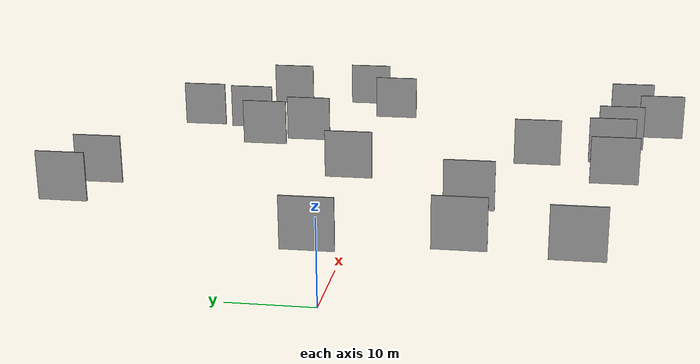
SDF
<sdf version="1.6">
 <world name="default">
  <scene>
   <sky><clouds><speed>12</speed></clouds></sky>
   <ambient>0.4 0.4 0.4 1</ambient>
   <background>0.7 0.7 0.7 1</background>
   <shadows>1</shadows>
  </scene>
  <gravity>0 0 -9.8066</gravity>
  <magnetic_field>6e-06 2.3e-05 -4.2e-05</magnetic_field>
  <physics default="0" name="default_physics" type="ode">
   <ode>
    <solver>
     <type>quick</type>
     <iters>10</iters>
     <sor>1.0</sor>
     <use_dynamic_moi_rescaling>0</use_dynamic_moi_rescaling>
    </solver>
    <constraints>
     <cfm>0</cfm>
     <erp>0.2</erp>
     <contact_max_correcting_vel>100</contact_max_correcting_vel>
     <contact_surface_layer>0.001</contact_surface_layer>
    </constraints>
   </ode>
   <max_step_size>0.004</max_step_size>
   <real_time_factor>1</real_time_factor>
   <real_time_update_rate>250</real_time_update_rate>
  </physics>
  <light name="sun" type="directional">
   <pose>0 0 10 0 0 0</pose>
   <diffuse>0.8 0.8 0.8 1</diffuse>
   <specular>0.2 0.2 0.2 1</specular>
   <attenuation>
    <range>1000</range>
    <constant>0.9</constant>
    <linear>0.01</linear>
    <quadratic>0.001</quadratic>
   </attenuation>
   <direction>-0.5 0.1 -0.9</direction>
  </light>
  <model name="grey_wall_1">
   <static>1</static>
   <pose>58.3960 -0.5911 5.0 0.000000 0.000000 1.570796</pose>
   <link name="link">
    <pose>0 0 3.00 0 0 0</pose>
    <collision name="collision"><geometry><box><size>6.00 0.2 6.00</size></box></geometry></collision>
    <visual name="visual">
     <cast_shadows>0</cast_shadows>
     <geometry><box><size>6.00 0.2 6.00</size></box></geometry>
     <material>
      <script>
       <uri>model://grey_wall/materials/scripts</uri>
       <uri>model://grey_wall/materials/textures</uri>
       <name>vrc/grey_wall</name>
      </script>
     </material>
    </visual>
   </link>
  </model>
  <model name="grey_wall_2">
   <static>1</static>
   <pose>37.3410 -21.9034 5.0 0.000000 0.000000 1.570796</pose>
   <link name="link">
    <pose>0 0 3.00 0 0 0</pose>
    <collision name="collision"><geometry><box><size>6.00 0.2 6.00</size></box></geometry></collision>
    <visual name="visual">
     <cast_shadows>0</cast_shadows>
     <geometry><box><size>6.00 0.2 6.00</size></box></geometry>
     <material>
      <script>
       <uri>model://grey_wall/materials/scripts</uri>
       <uri>model://grey_wall/materials/textures</uri>
       <name>vrc/grey_wall</name>
      </script>
     </material>
    </visual>
   </link>
  </model>
  <model name="grey_wall_3">
   <static>1</static>
   <pose>15.2201 33.7548 5.0 0.000000 0.000000 1.570796</pose>
   <link name="link">
    <pose>0 0 3.00 0 0 0</pose>
    <collision name="collision"><geometry><box><size>6.00 0.2 6.00</size></box></geometry></collision>
    <visual name="visual">
     <cast_shadows>0</cast_shadows>
     <geometry><box><size>6.00 0.2 6.00</size></box></geometry>
     <material>
      <script>
       <uri>model://grey_wall/materials/scripts</uri>
       <uri>model://grey_wall/materials/textures</uri>
       <name>vrc/grey_wall</name>
      </script>
     </material>
    </visual>
   </link>
  </model>
  <model name="grey_wall_4">
   <static>1</static>
   <pose>66.3346 4.4779 5.0 0.000000 0.000000 1.570796</pose>
   <link name="link">
    <pose>0 0 3.00 0 0 0</pose>
    <collision name="collision"><geometry><box><size>6.00 0.2 6.00</size></box></geometry></collision>
    <visual name="visual">
     <cast_shadows>0</cast_shadows>
     <geometry><box><size>6.00 0.2 6.00</size></box></geometry>
     <material>
      <script>
       <uri>model://grey_wall/materials/scripts</uri>
       <uri>model://grey_wall/materials/textures</uri>
       <name>vrc/grey_wall</name>
      </script>
     </material>
    </visual>
   </link>
  </model>
  <model name="grey_wall_5">
   <static>1</static>
   <pose>44.8449 10.0553 5.0 0.000000 0.000000 1.570796</pose>
   <link name="link">
    <pose>0 0 3.00 0 0 0</pose>
    <collision name="collision"><geometry><box><size>6.00 0.2 6.00</size></box></geometry></collision>
    <visual name="visual">
     <cast_shadows>0</cast_shadows>
     <geometry><box><size>6.00 0.2 6.00</size></box></geometry>
     <material>
      <script>
       <uri>model://grey_wall/materials/scripts</uri>
       <uri>model://grey_wall/materials/textures</uri>
       <name>vrc/grey_wall</name>
      </script>
     </material>
    </visual>
   </link>
  </model>
  <model name="grey_wall_6">
   <static>1</static>
   <pose>22.5848 32.0861 5.0 0.000000 0.000000 1.570796</pose>
   <link name="link">
    <pose>0 0 3.00 0 0 0</pose>
    <collision name="collision"><geometry><box><size>6.00 0.2 6.00</size></box></geometry></collision>
    <visual name="visual">
     <cast_shadows>0</cast_shadows>
     <geometry><box><size>6.00 0.2 6.00</size></box></geometry>
     <material>
      <script>
       <uri>model://grey_wall/materials/scripts</uri>
       <uri>model://grey_wall/materials/textures</uri>
       <name>vrc/grey_wall</name>
      </script>
     </material>
    </visual>
   </link>
  </model>
  <model name="grey_wall_7">
   <static>1</static>
   <pose>4.3440 -26.5365 5.0 0.000000 0.000000 1.570796</pose>
   <link name="link">
    <pose>0 0 3.00 0 0 0</pose>
    <collision name="collision"><geometry><box><size>6.00 0.2 6.00</size></box></geometry></collision>
    <visual name="visual">
     <cast_shadows>0</cast_shadows>
     <geometry><box><size>6.00 0.2 6.00</size></box></geometry>
     <material>
      <script>
       <uri>model://grey_wall/materials/scripts</uri>
       <uri>model://grey_wall/materials/textures</uri>
       <name>vrc/grey_wall</name>
      </script>
     </material>
    </visual>
   </link>
  </model>
  <model name="grey_wall_8">
   <static>1</static>
   <pose>39.3613 -31.5756 5.0 0.000000 0.000000 1.570796</pose>
   <link name="link">
    <pose>0 0 3.00 0 0 0</pose>
    <collision name="collision"><geometry><box><size>6.00 0.2 6.00</size></box></geometry></collision>
    <visual name="visual">
     <cast_shadows>0</cast_shadows>
     <geometry><box><size>6.00 0.2 6.00</size></box></geometry>
     <material>
      <script>
       <uri>model://grey_wall/materials/scripts</uri>
       <uri>model://grey_wall/materials/textures</uri>
       <name>vrc/grey_wall</name>
      </script>
     </material>
    </visual>
   </link>
  </model>
  <model name="grey_wall_9">
   <static>1</static>
   <pose>5.6189 -14.1888 5.0 0.000000 0.000000 1.570796</pose>
   <link name="link">
    <pose>0 0 3.00 0 0 0</pose>
    <collision name="collision"><geometry><box><size>6.00 0.2 6.00</size></box></geometry></collision>
    <visual name="visual">
     <cast_shadows>0</cast_shadows>
     <geometry><box><size>6.00 0.2 6.00</size></box></geometry>
     <material>
      <script>
       <uri>model://grey_wall/materials/scripts</uri>
       <uri>model://grey_wall/materials/textures</uri>
       <name>vrc/grey_wall</name>
      </script>
     </material>
    </visual>
   </link>
  </model>
  <model name="grey_wall_10">
   <static>1</static>
   <pose>64.6992 16.3798 5.0 0.000000 0.000000 1.570796</pose>
   <link name="link">
    <pose>0 0 3.00 0 0 0</pose>
    <collision name="collision"><geometry><box><size>6.00 0.2 6.00</size></box></geometry></collision>
    <visual name="visual">
     <cast_shadows>0</cast_shadows>
     <geometry><box><size>6.00 0.2 6.00</size></box></geometry>
     <material>
      <script>
       <uri>model://grey_wall/materials/scripts</uri>
       <uri>model://grey_wall/materials/textures</uri>
       <name>vrc/grey_wall</name>
      </script>
     </material>
    </visual>
   </link>
  </model>
  <model name="grey_wall_11">
   <static>1</static>
   <pose>45.7994 -33.0895 5.0 0.000000 0.000000 1.570796</pose>
   <link name="link">
    <pose>0 0 3.00 0 0 0</pose>
    <collision name="collision"><geometry><box><size>6.00 0.2 6.00</size></box></geometry></collision>
    <visual name="visual">
     <cast_shadows>0</cast_shadows>
     <geometry><box><size>6.00 0.2 6.00</size></box></geometry>
     <material>
      <script>
       <uri>model://grey_wall/materials/scripts</uri>
       <uri>model://grey_wall/materials/textures</uri>
       <name>vrc/grey_wall</name>
      </script>
     </material>
    </visual>
   </link>
  </model>
  <model name="grey_wall_12">
   <static>1</static>
   <pose>18.4371 -14.3033 5.0 0.000000 0.000000 1.570796</pose>
   <link name="link">
    <pose>0 0 3.00 0 0 0</pose>
    <collision name="collision"><geometry><box><size>6.00 0.2 6.00</size></box></geometry></collision>
    <visual name="visual">
     <cast_shadows>0</cast_shadows>
     <geometry><box><size>6.00 0.2 6.00</size></box></geometry>
     <material>
      <script>
       <uri>model://grey_wall/materials/scripts</uri>
       <uri>model://grey_wall/materials/textures</uri>
       <name>vrc/grey_wall</name>
      </script>
     </material>
    </visual>
   </link>
  </model>
  <model name="grey_wall_13">
   <static>1</static>
   <pose>30.4287 -31.4757 5.0 0.000000 0.000000 1.570796</pose>
   <link name="link">
    <pose>0 0 3.00 0 0 0</pose>
    <collision name="collision"><geometry><box><size>6.00 0.2 6.00</size></box></geometry></collision>
    <visual name="visual">
     <cast_shadows>0</cast_shadows>
     <geometry><box><size>6.00 0.2 6.00</size></box></geometry>
     <material>
      <script>
       <uri>model://grey_wall/materials/scripts</uri>
       <uri>model://grey_wall/materials/textures</uri>
       <name>vrc/grey_wall</name>
      </script>
     </material>
    </visual>
   </link>
  </model>
  <model name="grey_wall_14">
   <static>1</static>
   <pose>50.9836 26.7225 5.0 0.000000 0.000000 1.570796</pose>
   <link name="link">
    <pose>0 0 3.00 0 0 0</pose>
    <collision name="collision"><geometry><box><size>6.00 0.2 6.00</size></box></geometry></collision>
    <visual name="visual">
     <cast_shadows>0</cast_shadows>
     <geometry><box><size>6.00 0.2 6.00</size></box></geometry>
     <material>
      <script>
       <uri>model://grey_wall/materials/scripts</uri>
       <uri>model://grey_wall/materials/textures</uri>
       <name>vrc/grey_wall</name>
      </script>
     </material>
    </visual>
   </link>
  </model>
  <model name="grey_wall_15">
   <static>1</static>
   <pose>50.3394 19.5744 5.0 0.000000 0.000000 1.570796</pose>
   <link name="link">
    <pose>0 0 3.00 0 0 0</pose>
    <collision name="collision"><geometry><box><size>6.00 0.2 6.00</size></box></geometry></collision>
    <visual name="visual">
     <cast_shadows>0</cast_shadows>
     <geometry><box><size>6.00 0.2 6.00</size></box></geometry>
     <material>
      <script>
       <uri>model://grey_wall/materials/scripts</uri>
       <uri>model://grey_wall/materials/textures</uri>
       <name>vrc/grey_wall</name>
      </script>
     </material>
    </visual>
   </link>
  </model>
  <model name="grey_wall_16">
   <static>1</static>
   <pose>52.3462 -39.0106 5.0 0.000000 0.000000 1.570796</pose>
   <link name="link">
    <pose>0 0 3.00 0 0 0</pose>
    <collision name="collision"><geometry><box><size>6.00 0.2 6.00</size></box></geometry></collision>
    <visual name="visual">
     <cast_shadows>0</cast_shadows>
     <geometry><box><size>6.00 0.2 6.00</size></box></geometry>
     <material>
      <script>
       <uri>model://grey_wall/materials/scripts</uri>
       <uri>model://grey_wall/materials/textures</uri>
       <name>vrc/grey_wall</name>
      </script>
     </material>
    </visual>
   </link>
  </model>
  <model name="grey_wall_17">
   <static>1</static>
   <pose>42.1041 15.6597 5.0 0.000000 0.000000 1.570796</pose>
   <link name="link">
    <pose>0 0 3.00 0 0 0</pose>
    <collision name="collision"><geometry><box><size>6.00 0.2 6.00</size></box></geometry></collision>
    <visual name="visual">
     <cast_shadows>0</cast_shadows>
     <geometry><box><size>6.00 0.2 6.00</size></box></geometry>
     <material>
      <script>
       <uri>model://grey_wall/materials/scripts</uri>
       <uri>model://grey_wall/materials/textures</uri>
       <name>vrc/grey_wall</name>
      </script>
     </material>
    </visual>
   </link>
  </model>
  <model name="grey_wall_18">
   <static>1</static>
   <pose>3.4024 1.7170 5.0 0.000000 0.000000 1.570796</pose>
   <link name="link">
    <pose>0 0 3.00 0 0 0</pose>
    <collision name="collision"><geometry><box><size>6.00 0.2 6.00</size></box></geometry></collision>
    <visual name="visual">
     <cast_shadows>0</cast_shadows>
     <geometry><box><size>6.00 0.2 6.00</size></box></geometry>
     <material>
      <script>
       <uri>model://grey_wall/materials/scripts</uri>
       <uri>model://grey_wall/materials/textures</uri>
       <name>vrc/grey_wall</name>
      </script>
     </material>
    </visual>
   </link>
  </model>
  <model name="grey_wall_19">
   <static>1</static>
   <pose>59.0998 -35.3898 5.0 0.000000 0.000000 1.570796</pose>
   <link name="link">
    <pose>0 0 3.00 0 0 0</pose>
    <collision name="collision"><geometry><box><size>6.00 0.2 6.00</size></box></geometry></collision>
    <visual name="visual">
     <cast_shadows>0</cast_shadows>
     <geometry><box><size>6.00 0.2 6.00</size></box></geometry>
     <material>
      <script>
       <uri>model://grey_wall/materials/scripts</uri>
       <uri>model://grey_wall/materials/textures</uri>
       <name>vrc/grey_wall</name>
      </script>
     </material>
    </visual>
   </link>
  </model>
  <model name="grey_wall_20">
   <static>1</static>
   <pose>28.5642 1.5851 5.0 0.000000 0.000000 1.570796</pose>
   <link name="link">
    <pose>0 0 3.00 0 0 0</pose>
    <collision name="collision"><geometry><box><size>6.00 0.2 6.00</size></box></geometry></collision>
    <visual name="visual">
     <cast_shadows>0</cast_shadows>
     <geometry><box><size>6.00 0.2 6.00</size></box></geometry>
     <material>
      <script>
       <uri>model://grey_wall/materials/scripts</uri>
       <uri>model://grey_wall/materials/textures</uri>
       <name>vrc/grey_wall</name>
      </script>
     </material>
    </visual>
   </link>
  </model>
 </world>
</sdf>
